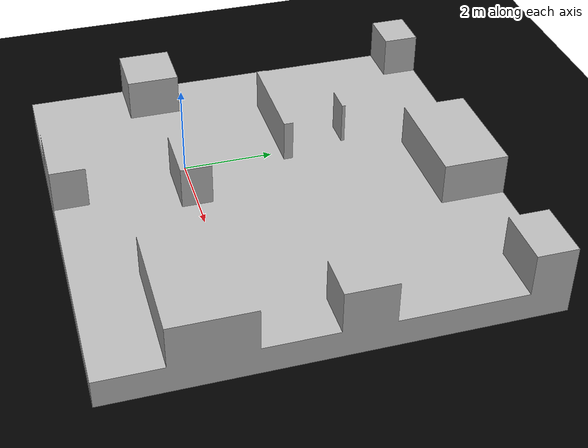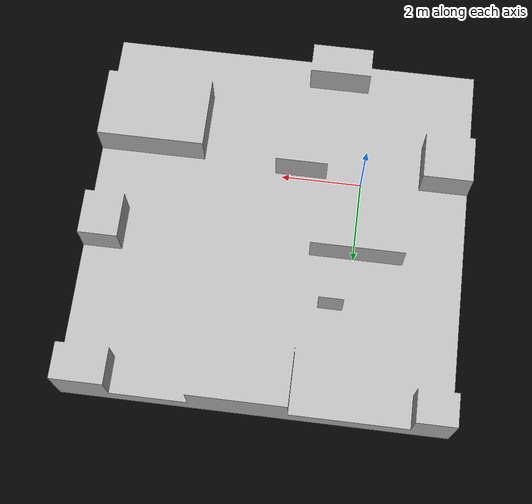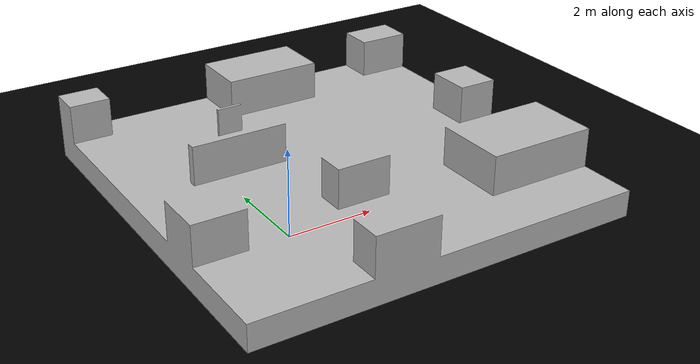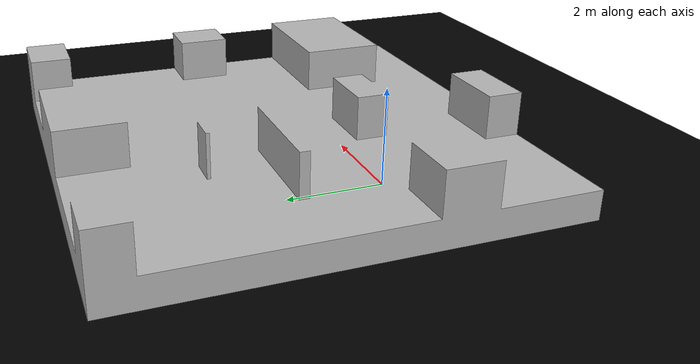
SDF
<?xml version="1.0" ?>
<sdf version="1.7">
	<world name="course_world">

		<!-- Plugins -->
		<plugin
		  filename="ignition-gazebo-physics-system"
		  name="gz::sim::systems::Physics"/>
		<plugin
		  filename="ignition-gazebo-user-commands-system"
		  name="gz::sim::systems::UserCommands"/>
		<plugin
		  filename="ignition-gazebo-scene-broadcaster-system"
		  name="gz::sim::systems::SceneBroadcaster"/>
		<plugin
		  filename="ignition-gazebo-contact-system"
		  name="gz::sim::systems::Contact"/>
		<plugin
		  filename="gz-sim-sensors-system"
		  name="gz::sim::systems::Sensors"/>
		<plugin
		  filename="gz-sim-imu-system"
		  name="gz::sim::systems::Imu"/>

		<!-- Lighting -->
		<light type="directional" name="sun">
			<cast_shadows>true</cast_shadows>
			<pose>0 0 10 0 0 0</pose>
			<diffuse>0.8 0.8 0.8 1</diffuse>
			<specular>0.2 0.2 0.2 1</specular>
			<attenuation>
				<range>1000</range>
				<constant>0.9</constant>
				<linear>0.01</linear>
				<quadratic>0.001</quadratic>
			</attenuation>
			<direction>-0.5 0.1 -0.9</direction>
		</light>

		<!-- Ground Plane -->
		<model name="ground_plane">
			<static>true</static>
			<link name="link">
				<collision name="collision">
					<geometry>
						<plane>
							<normal>0 0 1</normal>
							<size>100 100</size>
						</plane>
					</geometry>
				</collision>
				<visual name="visual">
					<geometry>
						<plane>
							<normal>0 0 1</normal>
							<size>100 100</size>
						</plane>
					</geometry>
					<material>
						<ambient>0.8 0.8 0.8 1</ambient>
						<diffuse>0 0 0 1</diffuse>
						<specular>0.8 0.8 0.8 1</specular>
					</material>
				</visual>
			</link>
		</model>

		<!-- You can insert your course geometry as a model here -->
		<model name="my_course">
			<static>true</static>
			<link name="link">
				<visual name="course_visual">
					<geometry>
						<mesh>
							<uri>./assets/course_world.stl</uri>

						</mesh>
					</geometry>
				</visual>
				<collision name="course_collision">
					<geometry>
						<mesh>
							<uri>./assets/course_world.stl</uri>

						</mesh>
					</geometry>
				</collision>
			</link>
		</model>

	</world>
</sdf>
